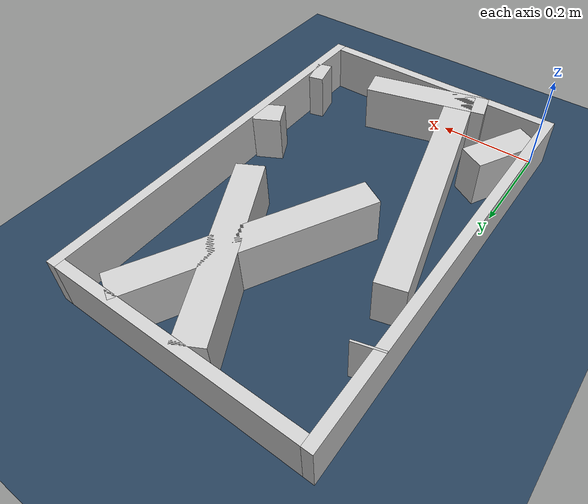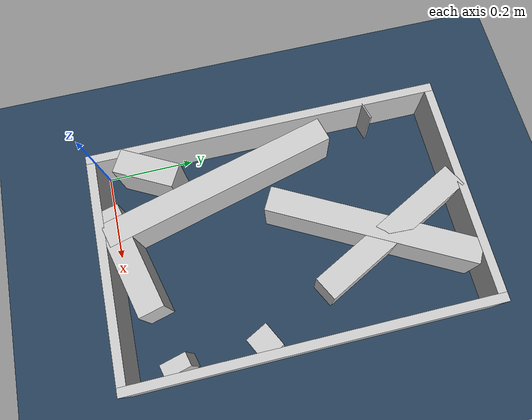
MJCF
<?xml version="1.0" ?>
<mujoco model="generated_real_template">
  <compiler angle="degree"/>
  <option timestep="0.002" integrator="implicitfast" iterations="100" cone="elliptic"/>
  <default>
    <geom density="1"/>
  </default>
  <asset>
    <texture builtin="gradient" height="3072" rgb1="0.3 0.5 0.7" rgb2="0 0 0" type="skybox" width="512"/>
    <texture builtin="checker" height="300" mark="edge" markrgb="0.8 0.8 0.8" name="groundplane" rgb1="0.2 0.3 0.4" rgb2="0.1 0.2 0.3" type="2d" width="300"/>
    <material name="groundplane" reflectance="0.2" texrepeat="5 5" texture="groundplane" texuniform="true"/>
  </asset>
  <worldbody>
    <light dir="0 0 -1" directional="true" pos="0 0 1.5"/>
    <geom name="floor" type="plane" condim="4" friction="0.5 0.005 0.001" material="groundplane" size="0 0 0.05"/>
    <body name="walls">
      <geom name="wall_boundary_left" type="box" condim="4" friction="1.0 0.005 0.0001" rgba="0.8 0.8 0.8 1" pos="-0.010000 0.387500 0.050000" euler="0 0 0.000000" size="0.010000 0.407500 0.050000"/>
      <geom name="wall_boundary_right" type="box" condim="4" friction="1.0 0.005 0.0001" rgba="0.8 0.8 0.8 1" pos="0.500000 0.387500 0.050000" euler="0 0 0.000000" size="0.010000 0.407500 0.050000"/>
      <geom name="wall_boundary_bottom" type="box" condim="4" friction="1.0 0.005 0.0001" rgba="0.8 0.8 0.8 1" pos="0.245000 -0.010000 0.050000" euler="0 0 0.000000" size="0.245000 0.010000 0.050000"/>
      <geom name="wall_boundary_top" type="box" condim="4" friction="1.0 0.005 0.0001" rgba="0.8 0.8 0.8 1" pos="0.245000 0.785000 0.050000" euler="0 0 0.000000" size="0.245000 0.010000 0.050000"/>
      <geom name="wall_inner_1_1" type="box" condim="4" friction="1.0 0.005 0.0001" rgba="0.8 0.8 0.8 1" pos="0.106077 0.260048 0.050000" euler="0 0 105.003405" size="0.269226 0.028500 0.050000"/>
      <geom name="wall_inner_1_2" type="box" condim="4" friction="1.0 0.005 0.0001" rgba="0.8 0.8 0.8 1" pos="0.007998 0.625994 0.050000" euler="0 0 105.003405" size="0.001811 0.028500 0.050000"/>
      <geom name="wall_inner_2_1" type="box" condim="4" friction="1.0 0.005 0.0001" rgba="0.8 0.8 0.8 1" pos="0.306485 0.602259 0.050000" euler="0 0 -62.413543" size="0.194898 0.028500 0.050000"/>
      <geom name="wall_inner_2_2" type="box" condim="4" friction="1.0 0.005 0.0001" rgba="0.8 0.8 0.8 1" pos="0.472645 0.284241 0.050000" euler="0 0 -62.413543" size="0.026117 0.028500 0.050000"/>
      <geom name="wall_inner_3_1" type="box" condim="4" friction="1.0 0.005 0.0001" rgba="0.8 0.8 0.8 1" pos="0.038265 0.109411 0.050000" euler="0 0 61.691155" size="0.069951 0.028500 0.050000"/>
      <geom name="wall_inner_3_2" type="box" condim="4" friction="1.0 0.005 0.0001" rgba="0.8 0.8 0.8 1" pos="0.284470 0.566494 0.050000" euler="0 0 61.691155" size="0.236830 0.028500 0.050000"/>
      <geom name="wall_inner_4_1" type="box" condim="4" friction="1.0 0.005 0.0001" rgba="0.8 0.8 0.8 1" pos="0.474982 0.100802 0.050000" euler="0 0 -165.456194" size="0.015515 0.028500 0.050000"/>
      <geom name="wall_inner_4_2" type="box" condim="4" friction="1.0 0.005 0.0001" rgba="0.8 0.8 0.8 1" pos="0.237498 0.039191 0.050000" euler="0 0 -165.456194" size="0.125850 0.028500 0.050000"/>
    </body>
  </worldbody>
</mujoco>
